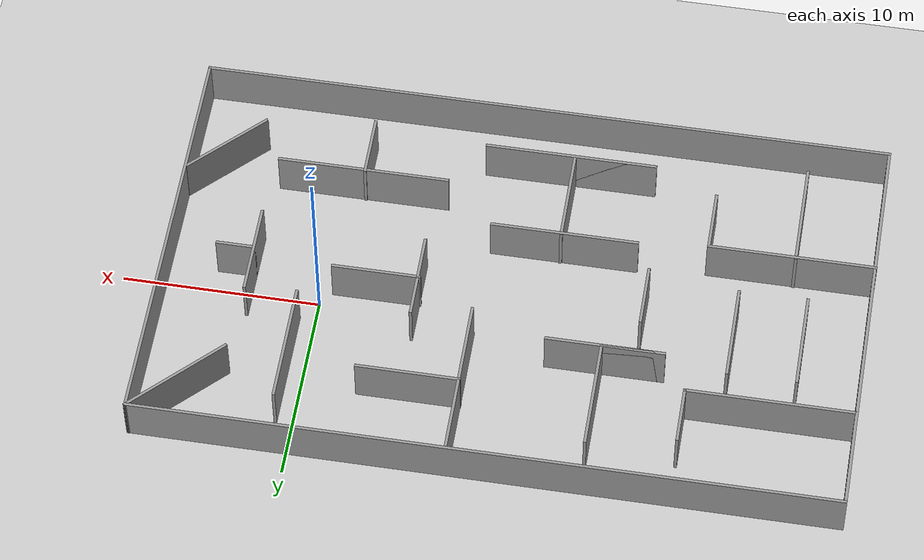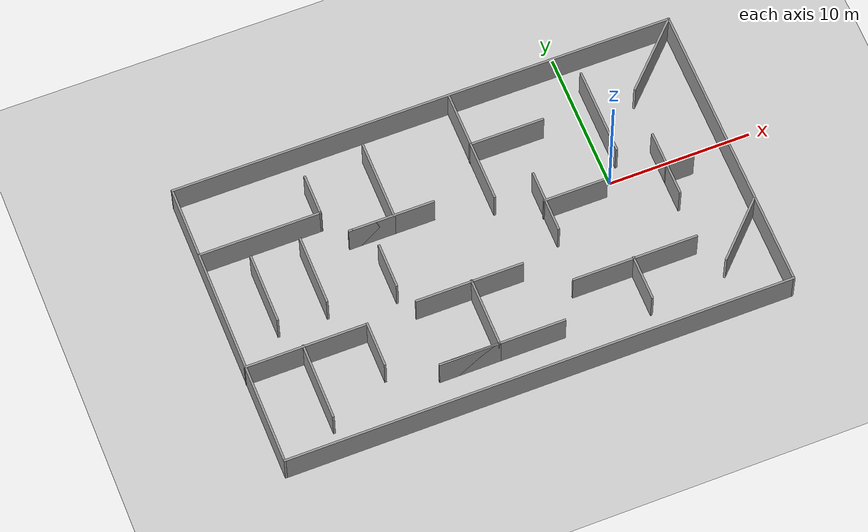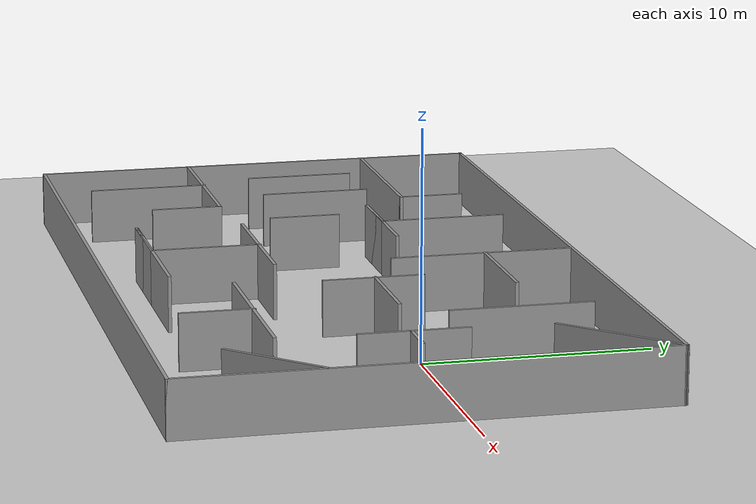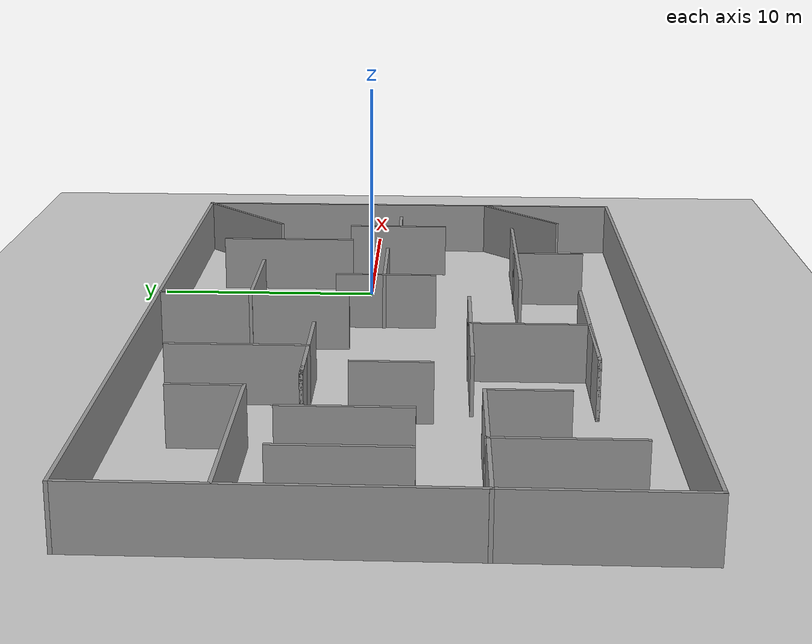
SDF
<sdf version="1.7">
 <world name="default">
  <light name="sun" type="directional">
   <pose>0 0 10 0 -0 0</pose>
   <diffuse>0.8 0.8 0.8 1</diffuse>
   <specular>0.2 0.2 0.2 1</specular>
   <attenuation>
    <range>1000</range>
    <constant>0.9</constant>
    <linear>0.01</linear>
    <quadratic>0.001</quadratic>
   </attenuation>
   <direction>-0.5 0.1 -0.9</direction>
   <spot><inner_angle>0</inner_angle><outer_angle>0</outer_angle><falloff>0</falloff></spot>
  </light>
  <model name="ground_plane">
   <static>1</static>
   <link name="link">
    <collision name="collision">
     <geometry><plane><normal>0 0 1</normal><size>100 100</size></plane></geometry>
     <surface><friction><ode><mu>100</mu><mu2>50</mu2></ode></friction></surface>
    </collision>
    <visual name="visual">
     <cast_shadows>0</cast_shadows>
     <geometry><plane><normal>0 0 1</normal><size>100 100</size></plane></geometry>
     <material>
      <script><uri>file://media/materials/scripts/gazebo.material</uri><name>Gazebo/Grey</name></script>
     </material>
    </visual>
   </link>
  </model>
  <gravity>0 0 0</gravity>
  <magnetic_field>6e-06 2.3e-05 -4.2e-05</magnetic_field>
  <atmosphere type="adiabatic"/>
  <physics type="ode">
   <max_step_size>0.001</max_step_size>
   <real_time_factor>1</real_time_factor>
   <real_time_update_rate>1000</real_time_update_rate>
  </physics>
  <scene><ambient>0.4 0.4 0.4 1</ambient><background>0.7 0.7 0.7 1</background><shadows>1</shadows></scene>
  <plugin name="ros_interface_plugin" filename="librotors_gazebo_ros_interface_plugin.so"/>
  <plugin name="gazebo_ros_state" filename="libgazebo_ros_state.so"/>
  <spherical_coordinates>
   <surface_model>EARTH_WGS84</surface_model>
   <latitude_deg>0</latitude_deg>
   <longitude_deg>0</longitude_deg>
   <elevation>0</elevation>
   <heading_deg>0</heading_deg>
  </spherical_coordinates>
  <model name="home07">
   <pose>-9.69633 -1.54843 0 0 -0 0</pose>
   <link name="Wall_10">
    <collision name="Wall_10_Collision">
     <geometry><box><size>35.25 0.15 2.5</size></box></geometry>
     <pose>0 0 1.25 0 -0 0</pose>
    </collision>
    <visual name="Wall_10_Visual">
     <pose>0 0 1.25 0 -0 0</pose>
     <geometry><box><size>35.25 0.15 2.5</size></box></geometry>
     <material>
      <script><uri>file://media/materials/scripts/gazebo.material</uri><name>Gazebo/Grey</name></script>
      <ambient>1 1 1 1</ambient>
     </material>
     <meta><layer>0</layer></meta>
    </visual>
    <pose>-0.003968 10.4095 0 0 -0 3.14159</pose>
   </link>
   <link name="Wall_15">
    <collision name="Wall_15_Collision">
     <geometry><box><size>8.5 0.15 2.5</size></box></geometry>
     <pose>0 0 1.25 0 -0 0</pose>
    </collision>
    <visual name="Wall_15_Visual">
     <pose>0 0 1.25 0 -0 0</pose>
     <geometry><box><size>8.5 0.15 2.5</size></box></geometry>
     <material>
      <script><uri>file://media/materials/scripts/gazebo.material</uri><name>Gazebo/Grey</name></script>
      <ambient>1 1 1 1</ambient>
     </material>
     <meta><layer>0</layer></meta>
    </visual>
    <pose>-13.3327 5.32073 0 0 -0 0</pose>
   </link>
   <link name="Wall_16">
    <collision name="Wall_16_Collision">
     <geometry><box><size>3 0.15 2.5</size></box></geometry>
     <pose>0 0 1.25 0 -0 0</pose>
    </collision>
    <visual name="Wall_16_Visual">
     <pose>0 0 1.25 0 -0 0</pose>
     <geometry><box><size>3 0.15 2.5</size></box></geometry>
     <material>
      <script><uri>file://media/materials/scripts/gazebo.material</uri><name>Gazebo/Grey</name></script>
      <ambient>1 1 1 1</ambient>
     </material>
     <meta><layer>0</layer></meta>
    </visual>
    <pose>-9.15771 6.74573 0 0 -0 1.5708</pose>
   </link>
   <link name="Wall_18">
    <collision name="Wall_18_Collision">
     <geometry><box><size>5 0.15 2.5</size></box></geometry>
     <pose>0 0 1.25 0 -0 0</pose>
    </collision>
    <visual name="Wall_18_Visual">
     <pose>0 0 1.25 0 -0 0</pose>
     <geometry><box><size>5 0.15 2.5</size></box></geometry>
     <material>
      <script><uri>file://media/materials/scripts/gazebo.material</uri><name>Gazebo/Grey</name></script>
      <ambient>1 1 1 1</ambient>
     </material>
     <meta><layer>0</layer></meta>
    </visual>
    <pose>-14.4776 1.53103 0 0 -0 -1.5708</pose>
   </link>
   <link name="Wall_20">
    <collision name="Wall_20_Collision">
     <geometry><box><size>5 0.15 2.5</size></box></geometry>
     <pose>0 0 1.25 0 -0 0</pose>
    </collision>
    <visual name="Wall_20_Visual">
     <pose>0 0 1.25 0 -0 0</pose>
     <geometry><box><size>5 0.15 2.5</size></box></geometry>
     <material>
      <script><uri>file://media/materials/scripts/gazebo.material</uri><name>Gazebo/Grey</name></script>
      <ambient>1 1 1 1</ambient>
     </material>
     <meta><layer>0</layer></meta>
    </visual>
    <pose>-11.0543 1.57729 0 0 -0 -1.5708</pose>
   </link>
   <link name="Wall_22">
    <collision name="Wall_22_Collision">
     <geometry><box><size>8.5 0.15 2.5</size></box></geometry>
     <pose>0 0 1.25 0 -0 0</pose>
    </collision>
    <visual name="Wall_22_Visual">
     <pose>0 0 1.25 0 -0 0</pose>
     <geometry><box><size>8.5 0.15 2.5</size></box></geometry>
     <material>
      <script><uri>file://media/materials/scripts/gazebo.material</uri><name>Gazebo/Grey</name></script>
      <ambient>1 1 1 1</ambient>
     </material>
     <meta><layer>0</layer></meta>
    </visual>
    <pose>-13.4021 -3.35324 0 0 -0 0</pose>
   </link>
   <link name="Wall_23">
    <collision name="Wall_23_Collision">
     <geometry><box><size>3.25 0.15 2.5</size></box></geometry>
     <pose>0 0 1.25 0 -0 0</pose>
    </collision>
    <visual name="Wall_23_Visual">
     <pose>0 0 1.25 0 -0 0</pose>
     <geometry><box><size>3.25 0.15 2.5</size></box></geometry>
     <material>
      <script><uri>file://media/materials/scripts/gazebo.material</uri><name>Gazebo/Grey</name></script>
      <ambient>1 1 1 1</ambient>
     </material>
     <meta><layer>0</layer></meta>
    </visual>
    <pose>-9.2271 -4.90324 0 0 -0 -1.5708</pose>
   </link>
   <link name="Wall_29">
    <collision name="Wall_29_Collision">
     <geometry><box><size>5.5 0.15 2.5</size></box></geometry>
     <pose>0 0 1.25 0 -0 0</pose>
    </collision>
    <visual name="Wall_29_Visual">
     <pose>0 0 1.25 0 -0 0</pose>
     <geometry><box><size>5.5 0.15 2.5</size></box></geometry>
     <material>
      <script><uri>file://media/materials/scripts/gazebo.material</uri><name>Gazebo/Grey</name></script>
      <ambient>1 1 1 1</ambient>
     </material>
     <meta><layer>0</layer></meta>
    </visual>
    <pose>-13.5986 -5.98198 0 0 -0 -1.5708</pose>
   </link>
   <link name="Wall_31">
    <collision name="Wall_31_Collision">
     <geometry><box><size>5.75 0.15 2.5</size></box></geometry>
     <pose>0 0 1.25 0 -0 0</pose>
    </collision>
    <visual name="Wall_31_Visual">
     <pose>0 0 1.25 0 -0 0</pose>
     <geometry><box><size>5.75 0.15 2.5</size></box></geometry>
     <material>
      <script><uri>file://media/materials/scripts/gazebo.material</uri><name>Gazebo/Grey</name></script>
      <ambient>1 1 1 1</ambient>
     </material>
     <meta><layer>0</layer></meta>
    </visual>
    <pose>-4.78587 6.17537 0 0 -0 -1.5708</pose>
   </link>
   <link name="Wall_32">
    <collision name="Wall_32_Collision">
     <geometry><box><size>3.25 0.15 2.5</size></box></geometry>
     <pose>0 0 1.25 0 -0 0</pose>
    </collision>
    <visual name="Wall_32_Visual">
     <pose>0 0 1.25 0 -0 0</pose>
     <geometry><box><size>3.25 0.15 2.5</size></box></geometry>
     <material>
      <script><uri>file://media/materials/scripts/gazebo.material</uri><name>Gazebo/Grey</name></script>
      <ambient>1 1 1 1</ambient>
     </material>
     <meta><layer>0</layer></meta>
    </visual>
    <pose>-6.33587 3.37537 0 0 -0 3.14159</pose>
   </link>
   <link name="Wall_33">
    <collision name="Wall_33_Collision">
     <geometry><box><size>6 0.15 2.5</size></box></geometry>
     <pose>0 0 1.25 0 -0 0</pose>
    </collision>
    <visual name="Wall_33_Visual">
     <pose>0 0 1.25 0 -0 0</pose>
     <geometry><box><size>6 0.15 2.5</size></box></geometry>
     <material>
      <script><uri>file://media/materials/scripts/gazebo.material</uri><name>Gazebo/Grey</name></script>
      <ambient>1 1 1 1</ambient>
     </material>
     <meta><layer>0</layer></meta>
    </visual>
    <pose>-4.96087 3.37537 0 0 -0 0</pose>
   </link>
   <link name="Wall_35">
    <collision name="Wall_35_Collision">
     <geometry><box><size>3.25 0.15 2.5</size></box></geometry>
     <pose>0 0 1.25 0 -0 0</pose>
    </collision>
    <visual name="Wall_35_Visual">
     <pose>0 0 1.25 0 -0 0</pose>
     <geometry><box><size>3.25 0.15 2.5</size></box></geometry>
     <material>
      <script><uri>file://media/materials/scripts/gazebo.material</uri><name>Gazebo/Grey</name></script>
      <ambient>1 1 1 1</ambient>
     </material>
     <meta><layer>0</layer></meta>
    </visual>
    <pose>-6.47441 0.092967 0 0 -0 -1.5708</pose>
   </link>
   <link name="Wall_37">
    <collision name="Wall_37_Collision">
     <geometry><box><size>7.5 0.15 2.5</size></box></geometry>
     <pose>0 0 1.25 0 -0 0</pose>
    </collision>
    <visual name="Wall_37_Visual">
     <pose>0 0 1.25 0 -0 0</pose>
     <geometry><box><size>7.5 0.15 2.5</size></box></geometry>
     <material>
      <script><uri>file://media/materials/scripts/gazebo.material</uri><name>Gazebo/Grey</name></script>
      <ambient>1 1 1 1</ambient>
     </material>
     <meta><layer>0</layer></meta>
    </visual>
    <pose>-2.01297 -2.98316 0 0 -0 0</pose>
   </link>
   <link name="Wall_39">
    <collision name="Wall_39_Collision">
     <geometry><box><size>5 0.15 2.5</size></box></geometry>
     <pose>0 0 1.25 0 -0 0</pose>
    </collision>
    <visual name="Wall_39_Visual">
     <pose>0 0 1.25 0 -0 0</pose>
     <geometry><box><size>5 0.15 2.5</size></box></geometry>
     <material>
      <script><uri>file://media/materials/scripts/gazebo.material</uri><name>Gazebo/Grey</name></script>
      <ambient>1 1 1 1</ambient>
     </material>
     <meta><layer>0</layer></meta>
    </visual>
    <pose>-1.84828 -5.36189 0 0 -0 -1.5708</pose>
   </link>
   <link name="Wall_40">
    <collision name="Wall_40_Collision">
     <geometry><box><size>4.25 0.15 2.5</size></box></geometry>
     <pose>0 0 1.25 0 -0 0</pose>
    </collision>
    <visual name="Wall_40_Visual">
     <pose>0 0 1.25 0 -0 0</pose>
     <geometry><box><size>4.25 0.15 2.5</size></box></geometry>
     <material>
      <script><uri>file://media/materials/scripts/gazebo.material</uri><name>Gazebo/Grey</name></script>
      <ambient>1 1 1 1</ambient>
     </material>
     <meta><layer>0</layer></meta>
    </visual>
    <pose>-3.89829 -7.78689 0 0 -0 3.14159</pose>
   </link>
   <link name="Wall_41">
    <collision name="Wall_41_Collision">
     <geometry><box><size>8.75 0.15 2.5</size></box></geometry>
     <pose>0 0 1.25 0 -0 0</pose>
    </collision>
    <visual name="Wall_41_Visual">
     <pose>0 0 1.25 0 -0 0</pose>
     <geometry><box><size>8.75 0.15 2.5</size></box></geometry>
     <material>
      <script><uri>file://media/materials/scripts/gazebo.material</uri><name>Gazebo/Grey</name></script>
      <ambient>1 1 1 1</ambient>
     </material>
     <meta><layer>0</layer></meta>
    </visual>
    <pose>-1.64829 -7.78689 0 0 -0 0</pose>
   </link>
   <link name="Wall_43">
    <collision name="Wall_43_Collision">
     <geometry><box><size>8.25 0.15 2.5</size></box></geometry>
     <pose>0 0 1.25 0 -0 0</pose>
    </collision>
    <visual name="Wall_43_Visual">
     <pose>0 0 1.25 0 -0 0</pose>
     <geometry><box><size>8.25 0.15 2.5</size></box></geometry>
     <material>
      <script><uri>file://media/materials/scripts/gazebo.material</uri><name>Gazebo/Grey</name></script>
      <ambient>1 1 1 1</ambient>
     </material>
     <meta><layer>0</layer></meta>
    </visual>
    <pose>1.80635 6.29007 0 0 -0 -1.5708</pose>
   </link>
   <link name="Wall_45">
    <collision name="Wall_45_Collision">
     <geometry><box><size>5.25 0.15 2.5</size></box></geometry>
     <pose>0 0 1.25 0 -0 0</pose>
    </collision>
    <visual name="Wall_45_Visual">
     <pose>0 0 1.25 0 -0 0</pose>
     <geometry><box><size>5.25 0.15 2.5</size></box></geometry>
     <material>
      <script><uri>file://media/materials/scripts/gazebo.material</uri><name>Gazebo/Grey</name></script>
      <ambient>1 1 1 1</ambient>
     </material>
     <meta><layer>0</layer></meta>
    </visual>
    <pose>4.33322 6.431 0 0 -0 0</pose>
   </link>
   <link name="Wall_47">
    <collision name="Wall_47_Collision">
     <geometry><box><size>4.5 0.15 2.5</size></box></geometry>
     <pose>0 0 1.25 0 -0 0</pose>
    </collision>
    <visual name="Wall_47_Visual">
     <pose>0 0 1.25 0 -0 0</pose>
     <geometry><box><size>4.5 0.15 2.5</size></box></geometry>
     <material>
      <script><uri>file://media/materials/scripts/gazebo.material</uri><name>Gazebo/Grey</name></script>
      <ambient>1 1 1 1</ambient>
     </material>
     <meta><layer>0</layer></meta>
    </visual>
    <pose>4.7902 0.693889 0 0 -0 -1.5708</pose>
   </link>
   <link name="Wall_49">
    <collision name="Wall_49_Collision">
     <geometry><box><size>4.5 0.15 2.5</size></box></geometry>
     <pose>0 0 1.25 0 -0 0</pose>
    </collision>
    <visual name="Wall_49_Visual">
     <pose>0 0 1.25 0 -0 0</pose>
     <geometry><box><size>4.5 0.15 2.5</size></box></geometry>
     <material>
      <script><uri>file://media/materials/scripts/gazebo.material</uri><name>Gazebo/Grey</name></script>
      <ambient>1 1 1 1</ambient>
     </material>
     <meta><layer>0</layer></meta>
    </visual>
    <pose>6.89581 0.764004 0 0 -0 0</pose>
   </link>
   <link name="Wall_51">
    <collision name="Wall_51_Collision">
     <geometry><box><size>8.75 0.15 2.5</size></box></geometry>
     <pose>0 0 1.25 0 -0 0</pose>
    </collision>
    <visual name="Wall_51_Visual">
     <pose>0 0 1.25 0 -0 0</pose>
     <geometry><box><size>8.75 0.15 2.5</size></box></geometry>
     <material>
      <script><uri>file://media/materials/scripts/gazebo.material</uri><name>Gazebo/Grey</name></script>
      <ambient>1 1 1 1</ambient>
     </material>
     <meta><layer>0</layer></meta>
    </visual>
    <pose>8.60446 -5.29622 0 0 -0 0</pose>
   </link>
   <link name="Wall_53">
    <collision name="Wall_53_Collision">
     <geometry><box><size>3.25 0.15 2.5</size></box></geometry>
     <pose>0 0 1.25 0 -0 0</pose>
    </collision>
    <visual name="Wall_53_Visual">
     <pose>0 0 1.25 0 -0 0</pose>
     <geometry><box><size>3.25 0.15 2.5</size></box></geometry>
     <material>
      <script><uri>file://media/materials/scripts/gazebo.material</uri><name>Gazebo/Grey</name></script>
      <ambient>1 1 1 1</ambient>
     </material>
     <meta><layer>0</layer></meta>
    </visual>
    <pose>8.51423 -6.79995 0 0 -0 -1.5708</pose>
   </link>
   <link name="Wall_55">
    <collision name="Wall_55_Collision">
     <geometry><box><size>6.25 0.15 2.5</size></box></geometry>
     <pose>0 0 1.25 0 -0 0</pose>
    </collision>
    <visual name="Wall_55_Visual">
     <pose>0 0 1.25 0 -0 0</pose>
     <geometry><box><size>6.25 0.15 2.5</size></box></geometry>
     <material>
      <script><uri>file://media/materials/scripts/gazebo.material</uri><name>Gazebo/Grey</name></script>
      <ambient>1 1 1 1</ambient>
     </material>
     <meta><layer>0</layer></meta>
    </visual>
    <pose>10.5497 5.62467 0 0 -0 -1.5708</pose>
   </link>
   <link name="Wall_57">
    <collision name="Wall_57_Collision">
     <geometry><box><size>6 0.15 2.5</size></box></geometry>
     <pose>0 0 1.25 0 -0 0</pose>
    </collision>
    <visual name="Wall_57_Visual">
     <pose>0 0 1.25 0 -0 0</pose>
     <geometry><box><size>6 0.15 2.5</size></box></geometry>
     <material>
      <script><uri>file://media/materials/scripts/gazebo.material</uri><name>Gazebo/Grey</name></script>
      <ambient>1 1 1 1</ambient>
     </material>
     <meta><layer>0</layer></meta>
    </visual>
    <pose>15.4777 8.34118 0 0 -0 -2.35619</pose>
   </link>
   <link name="Wall_59">
    <collision name="Wall_59_Collision">
     <geometry><box><size>4.75 0.15 2.5</size></box></geometry>
     <pose>0 0 1.25 0 -0 0</pose>
    </collision>
    <visual name="Wall_59_Visual">
     <pose>0 0 1.25 0 -0 0</pose>
     <geometry><box><size>4.75 0.15 2.5</size></box></geometry>
     <material>
      <script><uri>file://media/materials/scripts/gazebo.material</uri><name>Gazebo/Grey</name></script>
      <ambient>1 1 1 1</ambient>
     </material>
     <meta><layer>0</layer></meta>
    </visual>
    <pose>13.1635 0.383844 0 0 -0 -1.5708</pose>
   </link>
   <link name="Wall_61">
    <collision name="Wall_61_Collision">
     <geometry><box><size>2 0.15 2.5</size></box></geometry>
     <pose>0 0 1.25 0 -0 0</pose>
    </collision>
    <visual name="Wall_61_Visual">
     <pose>0 0 1.25 0 -0 0</pose>
     <geometry><box><size>2 0.15 2.5</size></box></geometry>
     <material>
      <script><uri>file://media/materials/scripts/gazebo.material</uri><name>Gazebo/Grey</name></script>
      <ambient>1 1 1 1</ambient>
     </material>
     <meta><layer>0</layer></meta>
    </visual>
    <pose>14.0885 0.278261 0 0 -0 0</pose>
   </link>
   <link name="Wall_63">
    <collision name="Wall_63_Collision">
     <geometry><box><size>5 0.15 2.5</size></box></geometry>
     <pose>0 0 1.25 0 -0 0</pose>
    </collision>
    <visual name="Wall_63_Visual">
     <pose>0 0 1.25 0 -0 0</pose>
     <geometry><box><size>5 0.15 2.5</size></box></geometry>
     <material>
      <script><uri>file://media/materials/scripts/gazebo.material</uri><name>Gazebo/Grey</name></script>
      <ambient>1 1 1 1</ambient>
     </material>
     <meta><layer>0</layer></meta>
    </visual>
    <pose>15.751 -5.85442 0 0 -0 -2.35619</pose>
   </link>
   <link name="Wall_7">
    <collision name="Wall_7_Collision">
     <geometry><box><size>21 0.15 2.5</size></box></geometry>
     <pose>0 0 1.25 0 -0 0</pose>
    </collision>
    <visual name="Wall_7_Visual">
     <pose>0 0 1.25 0 -0 0</pose>
     <geometry><box><size>21 0.15 2.5</size></box></geometry>
     <material>
      <script><uri>file://media/materials/scripts/gazebo.material</uri><name>Gazebo/Grey</name></script>
      <ambient>1 1 1 1</ambient>
     </material>
     <meta><layer>0</layer></meta>
    </visual>
    <pose>-17.554 -0.015533 0 0 -0 -1.5708</pose>
   </link>
   <link name="Wall_8">
    <collision name="Wall_8_Collision">
     <geometry><box><size>35.25 0.15 2.5</size></box></geometry>
     <pose>0 0 1.25 0 -0 0</pose>
    </collision>
    <visual name="Wall_8_Visual">
     <pose>0 0 1.25 0 -0 0</pose>
     <geometry><box><size>35.25 0.15 2.5</size></box></geometry>
     <material>
      <script><uri>file://media/materials/scripts/gazebo.material</uri><name>Gazebo/Grey</name></script>
      <ambient>1 1 1 1</ambient>
     </material>
     <meta><layer>0</layer></meta>
    </visual>
    <pose>-0.003968 -10.4405 0 0 -0 0</pose>
   </link>
   <link name="Wall_9">
    <collision name="Wall_9_Collision">
     <geometry><box><size>21 0.15 2.5</size></box></geometry>
     <pose>0 0 1.25 0 -0 0</pose>
    </collision>
    <visual name="Wall_9_Visual">
     <pose>0 0 1.25 0 -0 0</pose>
     <geometry><box><size>21 0.15 2.5</size></box></geometry>
     <material>
      <script><uri>file://media/materials/scripts/gazebo.material</uri><name>Gazebo/Grey</name></script>
      <ambient>1 1 1 1</ambient>
     </material>
     <meta><layer>0</layer></meta>
    </visual>
    <pose>17.546 -0.015533 0 0 -0 1.5708</pose>
   </link>
   <static>1</static>
  </model>
  <model name="camera">
   <link name="camera">
    <inertial>
     <mass>1e-05</mass>
     <inertia><ixx>1e-06</ixx><ixy>0</ixy><ixz>0</ixz><iyy>1e-06</iyy><iyz>0</iyz><izz>1e-06</izz></inertia>
    </inertial>
    <collision name="camera_collision"><geometry><box><size>0.001 0.001 0.001</size></box></geometry></collision>
    <visual name="camera_visual"><geometry><box><size>0.001 0.001 0.001</size></box></geometry></visual>
    <sensor name="camera" type="camera">
     <update_rate>15</update_rate>
     <camera name="head">
      <horizontal_fov>2</horizontal_fov>
      <image><width>320</width><height>180</height><format>R8G8B8</format></image>
      <clip><near>0.1</near><far>200</far></clip>
     </camera>
     <plugin name="camera_controller" filename="libgazebo_ros_camera.so">
      <alwaysOn>1</alwaysOn>
      <updateRate>0.0</updateRate>
      <cameraName>camera</cameraName>
      <imageTopicName>image</imageTopicName>
      <cameraInfoTopicName>camera_info</cameraInfoTopicName>
      <frameName>camera</frameName>
      <hackBaseline>0.0</hackBaseline>
      <distortionK1>0.0</distortionK1>
      <distortionK2>0.0</distortionK2>
      <distortionK3>0.0</distortionK3>
      <distortionT1>0.0</distortionT1>
      <distortionT2>0.0</distortionT2>
      <robotNamespace>/</robotNamespace>
     </plugin>
    </sensor>
   </link>
   <pose>0 0 0.749941 0 -0 0</pose>
  </model>
 </world>
</sdf>
